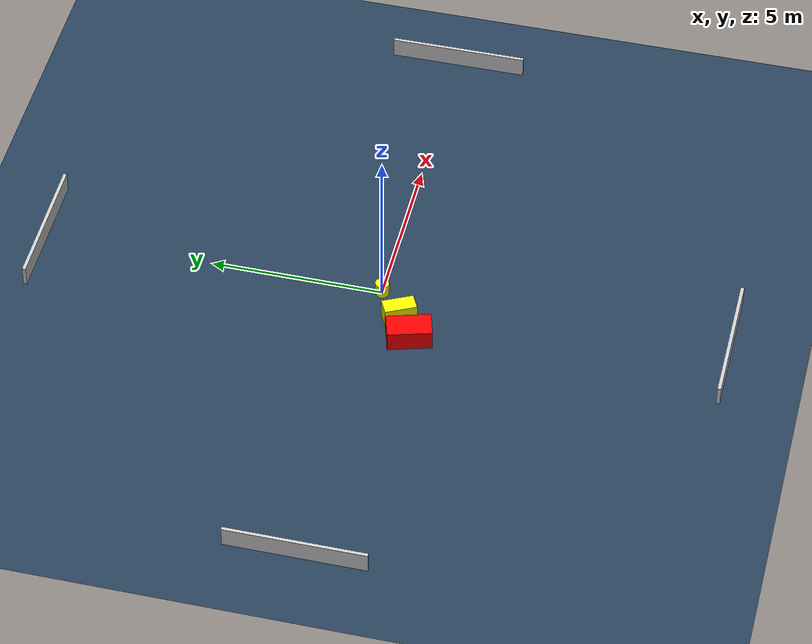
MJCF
<?xml version="1.0" ?>
<mujoco model="generated_environment">
  <option timestep="0.01" integrator="RK4" cone="elliptic"/>
  <default>
    <geom density="1"/>
  </default>
  <asset>
    <texture builtin="gradient" height="3072" name="skybox" rgb1="0.3 0.5 0.7" rgb2="0 0 0" type="skybox" width="512"/>
    <texture builtin="checker" height="300" name="groundplane" rgb1="0.2 0.3 0.4" rgb2="0.1 0.2 0.3" type="2d" width="300"/>
    <material name="groundplane" reflectance="0.2" texrepeat="5 5" texture="groundplane"/>
  </asset>
  <worldbody>
    <light dir="0 0 -1" directional="true" pos="0 0 1.5"/>
    <geom condim="3" friction="0.5 0.005 0.001" material="groundplane" name="floor" pos="0 0 0" size="0 0 0.05" type="plane"/>
    <body name="walls">
      <geom name="wall_1" condim="4" pos="-10.0 0.0 0.3" rgba="0.800000011920929 0.800000011920929 0.800000011920929 1.0" size="0.05 2.0 0.3" type="box"/>
      <geom name="wall_2" condim="4" pos="10.0 0.0 0.3" rgba="0.800000011920929 0.800000011920929 0.800000011920929 1.0" size="0.05 2.0 0.3" type="box"/>
      <geom name="wall_3" condim="4" pos="0.0 -10.0 0.3" rgba="0.800000011920929 0.800000011920929 0.800000011920929 1.0" size="2.0 0.05 0.3" type="box"/>
      <geom name="wall_4" condim="4" pos="0.0 10.0 0.3" rgba="0.800000011920929 0.800000011920929 0.800000011920929 1.0" size="2.0 0.05 0.3" type="box"/>
    </body>
    <body name="robot">
      <joint name="joint_x" type="slide" pos="0 0 0" axis="1 0 0"/>
      <joint name="joint_y" type="slide" pos="0 0 0" axis="0 1 0"/>
      <geom name="robot" type="cylinder" pos="0.0 0.0 0.2" size="0.2 0.2 0.0" mass="5.0" friction="1.0 0.005 0.0001" condim="4" rgba="1.0 1.0 0.0 1.0"/>
    </body>
    <body name="obstacle_1_movable">
      <geom name="obstacle_1_movable" condim="4" pos="-0.8719142551670084 -0.6987850873892587 0.3" euler="0 0 206.5886281682274" friction="0.0 0.005 0.001" rgba="1.0 1.0 0.0 1.0" size="0.23381828625929263 0.46524847506576034 0.3" type="box" mass="0.1"/>
      <joint type="free"/>
    </body>
    <body name="obstacle_2_static">
      <geom name="obstacle_2_static" condim="4" pos="-1.592760210365484 -1.1493983048470329 0.3" euler="0 0 16.513038349297325" friction="0.0 0.005 0.001" rgba="1.0 0.0 0.0 1.0" size="0.36986220151111937 0.638650924879384 0.3" type="box"/>
    </body>
  </worldbody>
  <actuator>
    <motor name="actuator_x" joint="joint_x" gear="1" ctrlrange="-1 1"/>
    <motor name="actuator_y" joint="joint_y" gear="1" ctrlrange="-1 1"/>
  </actuator>
</mujoco>
